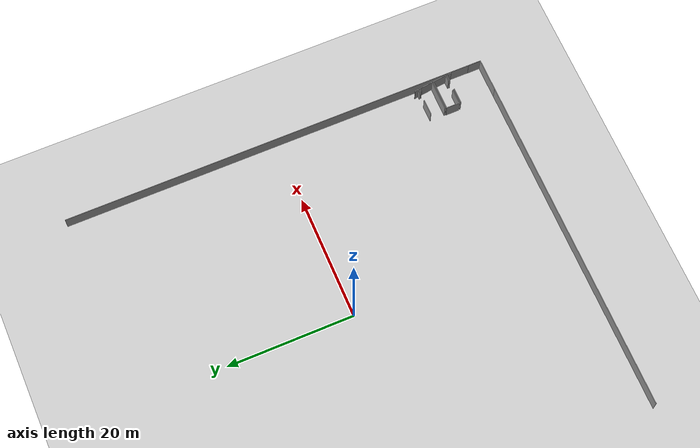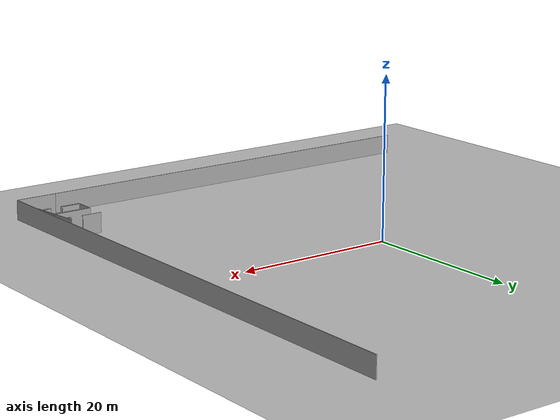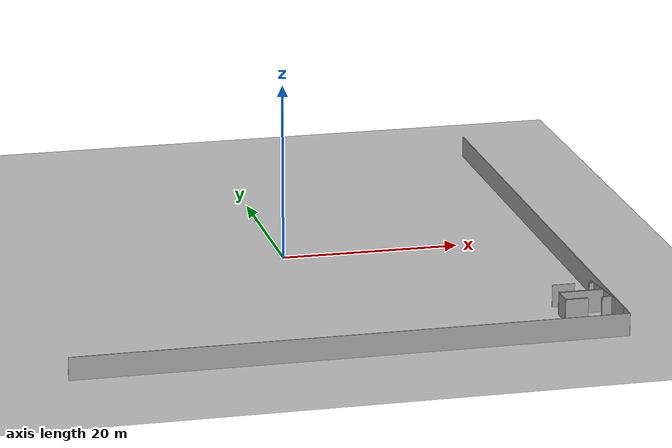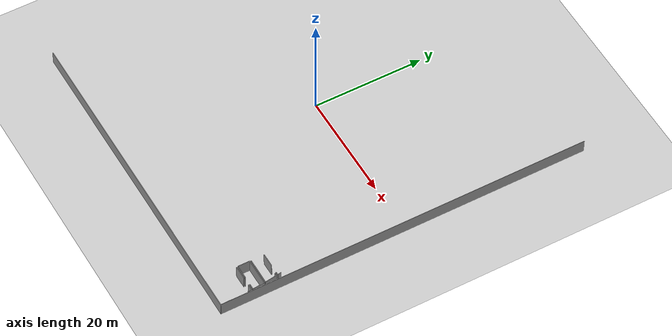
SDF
<sdf version="1.6">
 <world name="default">
  <model name="ground_plane">
   <static>1</static>
   <link name="link">
    <collision name="collision">
     <geometry><plane><normal>0 0 1</normal><size>100 100</size></plane></geometry>
     <surface><friction><ode><mu>100</mu><mu2>50</mu2></ode></friction></surface>
    </collision>
    <visual name="visual">
     <cast_shadows>0</cast_shadows>
     <geometry><plane><normal>0 0 1</normal><size>100 100</size></plane></geometry>
     <material>
      <script><uri>file://media/materials/scripts/gazebo.material</uri><name>Gazebo/Grey</name></script>
     </material>
    </visual>
   </link>
  </model>
  <model name="50041192">
   <static>1</static>
   <link name="Wall_198">
    <collision name="Wall_198_Collision">
     <geometry><box><size>0.668744210047 0.1 2.5</size></box></geometry>
     <pose>0.334372105024 0 1.25 0 0 0</pose>
    </collision>
    <visual name="Wall_198_Visual">
     <pose>0.334372105024 0 1.25 0 0 0</pose>
     <geometry><box><size>0.668744210047 0.1 2.5</size></box></geometry>
     <material>
      <script><uri>file://media/materials/scripts/gazebo.material</uri><name>Gazebo/Grey</name></script>
      <ambient>1 1 1 1</ambient>
     </material>
    </visual>
    <pose>58.6643030511 -56.4452873826 0 0 0 -1.41895603633</pose>
   </link>
   <link name="Wall_199">
    <collision name="Wall_199_Collision">
     <geometry><box><size>0.516564370401 0.1 2.5</size></box></geometry>
     <pose>0.258282185201 0 1.25 0 0 0</pose>
    </collision>
    <visual name="Wall_199_Visual">
     <pose>0.258282185201 0 1.25 0 0 0</pose>
     <geometry><box><size>0.516564370401 0.1 2.5</size></box></geometry>
     <material>
      <script><uri>file://media/materials/scripts/gazebo.material</uri><name>Gazebo/Grey</name></script>
      <ambient>1 1 1 1</ambient>
     </material>
    </visual>
    <pose>58.7654556314 -57.1063372854 0 0 0 3.14159265359</pose>
   </link>
   <link name="Wall_200">
    <collision name="Wall_200_Collision">
     <geometry><box><size>2.5177588858 0.1 2.5</size></box></geometry>
     <pose>1.2588794429 0 1.25 0 0 0</pose>
    </collision>
    <visual name="Wall_200_Visual">
     <pose>1.2588794429 0 1.25 0 0 0</pose>
     <geometry><box><size>2.5177588858 0.1 2.5</size></box></geometry>
     <material>
      <script><uri>file://media/materials/scripts/gazebo.material</uri><name>Gazebo/Grey</name></script>
      <ambient>1 1 1 1</ambient>
     </material>
    </visual>
    <pose>56.7255029037 -57.1063372854 0 0 0 3.14159265359</pose>
   </link>
   <link name="Wall_204">
    <collision name="Wall_204_Collision">
     <geometry><box><size>0.520757881895 0.1 2.5</size></box></geometry>
     <pose>0.260378940948 0 1.25 0 0 0</pose>
    </collision>
    <visual name="Wall_204_Visual">
     <pose>0.260378940948 0 1.25 0 0 0</pose>
     <geometry><box><size>0.520757881895 0.1 2.5</size></box></geometry>
     <material>
      <script><uri>file://media/materials/scripts/gazebo.material</uri><name>Gazebo/Grey</name></script>
      <ambient>1 1 1 1</ambient>
     </material>
    </visual>
    <pose>58.2795166025 -57.3442237556 0 0 0 0.0</pose>
   </link>
   <link name="Wall_205">
    <collision name="Wall_205_Collision">
     <geometry><box><size>2.1776834757 0.1 2.5</size></box></geometry>
     <pose>1.08884173785 0 1.25 0 0 0</pose>
    </collision>
    <visual name="Wall_205_Visual">
     <pose>1.08884173785 0 1.25 0 0 0</pose>
     <geometry><box><size>2.1776834757 0.1 2.5</size></box></geometry>
     <material>
      <script><uri>file://media/materials/scripts/gazebo.material</uri><name>Gazebo/Grey</name></script>
      <ambient>1 1 1 1</ambient>
     </material>
    </visual>
    <pose>58.8002744844 -57.3442237556 0 0 0 -1.44023841381</pose>
   </link>
   <link name="Wall_206">
    <collision name="Wall_206_Collision">
     <geometry><box><size>4.86168102182 0.1 2.5</size></box></geometry>
     <pose>2.43084051091 0 1.25 0 0 0</pose>
    </collision>
    <visual name="Wall_206_Visual">
     <pose>2.43084051091 0 1.25 0 0 0</pose>
     <geometry><box><size>4.86168102182 0.1 2.5</size></box></geometry>
     <material>
      <script><uri>file://media/materials/scripts/gazebo.material</uri><name>Gazebo/Grey</name></script>
      <ambient>1 1 1 1</ambient>
     </material>
    </visual>
    <pose>59.0837812766 -59.5033738706 0 0 0 3.14041642955</pose>
   </link>
   <link name="Wall_207">
    <collision name="Wall_207_Collision">
     <geometry><box><size>2.15953134332 0.1 2.5</size></box></geometry>
     <pose>1.07976567166 0 1.25 0 0 0</pose>
    </collision>
    <visual name="Wall_207_Visual">
     <pose>1.07976567166 0 1.25 0 0 0</pose>
     <geometry><box><size>2.15953134332 0.1 2.5</size></box></geometry>
     <material>
      <script><uri>file://media/materials/scripts/gazebo.material</uri><name>Gazebo/Grey</name></script>
      <ambient>1 1 1 1</ambient>
     </material>
    </visual>
    <pose>54.2262971294 -61.9034602824 0 0 0 1.57079632679</pose>
   </link>
   <link name="Wall_208">
    <collision name="Wall_208_Collision">
     <geometry><box><size>4.88747410824 0.1 2.5</size></box></geometry>
     <pose>2.44373705412 0 1.25 0 0 0</pose>
    </collision>
    <visual name="Wall_208_Visual">
     <pose>2.44373705412 0 1.25 0 0 0</pose>
     <geometry><box><size>4.88747410824 0.1 2.5</size></box></geometry>
     <material>
      <script><uri>file://media/materials/scripts/gazebo.material</uri><name>Gazebo/Grey</name></script>
      <ambient>1 1 1 1</ambient>
     </material>
    </visual>
    <pose>54.2262971294 -59.743928939 0 0 0 0.0</pose>
   </link>
   <link name="Wall_209">
    <collision name="Wall_209_Collision">
     <geometry><box><size>2.17400835199 0.1 2.5</size></box></geometry>
     <pose>1.08700417599 0 1.25 0 0 0</pose>
    </collision>
    <visual name="Wall_209_Visual">
     <pose>1.08700417599 0 1.25 0 0 0</pose>
     <geometry><box><size>2.17400835199 0.1 2.5</size></box></geometry>
     <material>
      <script><uri>file://media/materials/scripts/gazebo.material</uri><name>Gazebo/Grey</name></script>
      <ambient>1 1 1 1</ambient>
     </material>
    </visual>
    <pose>59.1137712376 -59.743928939 0 0 0 -1.4753153763</pose>
   </link>
   <link name="Wall_210">
    <collision name="Wall_210_Collision">
     <geometry><box><size>1.0654060717 0.1 2.5</size></box></geometry>
     <pose>0.532703035848 0 1.25 0 0 0</pose>
    </collision>
    <visual name="Wall_210_Visual">
     <pose>0.532703035848 0 1.25 0 0 0</pose>
     <geometry><box><size>1.0654060717 0.1 2.5</size></box></geometry>
     <material>
      <script><uri>file://media/materials/scripts/gazebo.material</uri><name>Gazebo/Grey</name></script>
      <ambient>1 1 1 1</ambient>
     </material>
    </visual>
    <pose>59.3210323663 -61.9080350222 0 0 0 3.14159265359</pose>
   </link>
   <link name="Wall_211">
    <collision name="Wall_211_Collision">
     <geometry><box><size>2.47862366694 0.1 2.5</size></box></geometry>
     <pose>1.23931183347 0 1.25 0 0 0</pose>
    </collision>
    <visual name="Wall_211_Visual">
     <pose>1.23931183347 0 1.25 0 0 0</pose>
     <geometry><box><size>2.47862366694 0.1 2.5</size></box></geometry>
     <material>
      <script><uri>file://media/materials/scripts/gazebo.material</uri><name>Gazebo/Grey</name></script>
      <ambient>1 1 1 1</ambient>
     </material>
    </visual>
    <pose>56.7049165745 -61.9080350222 0 0 0 3.13974697509</pose>
   </link>
   <link name="Wall_213">
    <collision name="Wall_213_Collision">
     <geometry><box><size>2.50467004689 0.1 2.5</size></box></geometry>
     <pose>1.25233502345 0 1.25 0 0 0</pose>
    </collision>
    <visual name="Wall_213_Visual">
     <pose>1.25233502345 0 1.25 0 0 0</pose>
     <geometry><box><size>2.50467004689 0.1 2.5</size></box></geometry>
     <material>
      <script><uri>file://media/materials/scripts/gazebo.material</uri><name>Gazebo/Grey</name></script>
      <ambient>1 1 1 1</ambient>
     </material>
    </visual>
    <pose>54.2247722161 -62.1513857649 0 0 0 0.0</pose>
   </link>
   <link name="Wall_214">
    <collision name="Wall_214_Collision">
     <geometry><box><size>1.07887613892 0.1 2.5</size></box></geometry>
     <pose>0.53943806946 0 1.25 0 0 0</pose>
    </collision>
    <visual name="Wall_214_Visual">
     <pose>0.53943806946 0 1.25 0 0 0</pose>
     <geometry><box><size>1.07887613892 0.1 2.5</size></box></geometry>
     <material>
      <script><uri>file://media/materials/scripts/gazebo.material</uri><name>Gazebo/Grey</name></script>
      <ambient>1 1 1 1</ambient>
     </material>
    </visual>
    <pose>58.2664277636 -62.1513857649 0 0 0 0.0</pose>
   </link>
   <link name="Wall_215">
    <collision name="Wall_215_Collision">
     <geometry><box><size>0.686415863149 0.1 2.5</size></box></geometry>
     <pose>0.343207931575 0 1.25 0 0 0</pose>
    </collision>
    <visual name="Wall_215_Visual">
     <pose>0.343207931575 0 1.25 0 0 0</pose>
     <geometry><box><size>0.686415863149 0.1 2.5</size></box></geometry>
     <material>
      <script><uri>file://media/materials/scripts/gazebo.material</uri><name>Gazebo/Grey</name></script>
      <ambient>1 1 1 1</ambient>
     </material>
    </visual>
    <pose>59.3453039025 -62.1513857649 0 0 0 -1.50521333584</pose>
   </link>
   <link name="Wall_216">
    <collision name="Wall_216_Collision">
     <geometry><box><size>2.03506347064 0.1 2.5</size></box></geometry>
     <pose>1.01753173532 0 1.25 0 0 0</pose>
    </collision>
    <visual name="Wall_216_Visual">
     <pose>1.01753173532 0 1.25 0 0 0</pose>
     <geometry><box><size>2.03506347064 0.1 2.5</size></box></geometry>
     <material>
      <script><uri>file://media/materials/scripts/gazebo.material</uri><name>Gazebo/Grey</name></script>
      <ambient>1 1 1 1</ambient>
     </material>
    </visual>
    <pose>59.5221938419 -65.8208353983 0 0 0 -1.55699591651</pose>
   </link>
   <link name="Wall_217">
    <collision name="Wall_217_Collision">
     <geometry><box><size>5.32550639279 0.1 2.5</size></box></geometry>
     <pose>2.6627531964 0 1.25 0 0 0</pose>
    </collision>
    <visual name="Wall_217_Visual">
     <pose>2.6627531964 0 1.25 0 0 0</pose>
     <geometry><box><size>5.32550639279 0.1 2.5</size></box></geometry>
     <material>
      <script><uri>file://media/materials/scripts/gazebo.material</uri><name>Gazebo/Grey</name></script>
      <ambient>1 1 1 1</ambient>
     </material>
    </visual>
    <pose>59.5502776613 -67.8557050818 0 0 0 -3.14099610885</pose>
   </link>
   <link name="Wall_364">
    <collision name="Wall_364_Collision">
     <geometry><box><size>67.8621859632 0.1 2.5</size></box></geometry>
     <pose>33.9310929816 0 1.25 0 0 0</pose>
    </collision>
    <visual name="Wall_364_Visual">
     <pose>33.9310929816 0 1.25 0 0 0</pose>
     <geometry><box><size>67.8621859632 0.1 2.5</size></box></geometry>
     <material>
      <script><uri>file://media/materials/scripts/gazebo.material</uri><name>Gazebo/Grey</name></script>
      <ambient>1 1 1 1</ambient>
     </material>
    </visual>
    <pose>59.5502776613 -67.8621859632 0 0 0 1.57079632679</pose>
   </link>
   <link name="Wall_365">
    <collision name="Wall_365_Collision">
     <geometry><box><size>59.5502776613 0.1 2.5</size></box></geometry>
     <pose>29.7751388306 0 1.25 0 0 0</pose>
    </collision>
    <visual name="Wall_365_Visual">
     <pose>29.7751388306 0 1.25 0 0 0</pose>
     <geometry><box><size>59.5502776613 0.1 2.5</size></box></geometry>
     <material>
      <script><uri>file://media/materials/scripts/gazebo.material</uri><name>Gazebo/Grey</name></script>
      <ambient>1 1 1 1</ambient>
     </material>
    </visual>
    <pose>59.5502776613 -67.8621859632 0 0 0 3.14159265359</pose>
   </link>
   <pose>-29.75 33.9121859632 0 0 0 0</pose>
  </model>
 </world>
</sdf>
